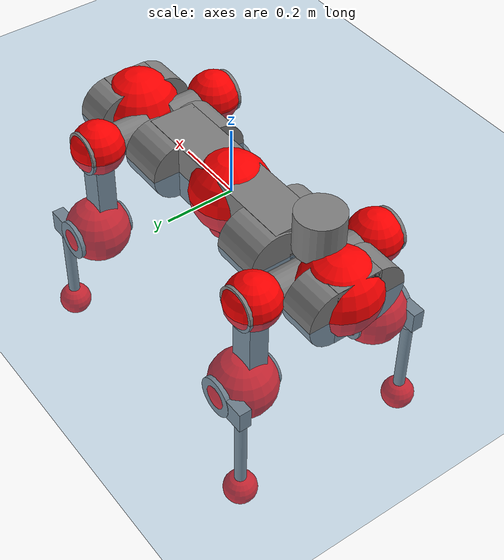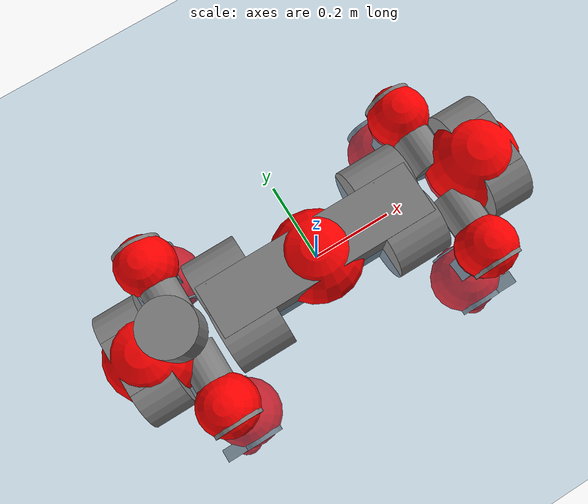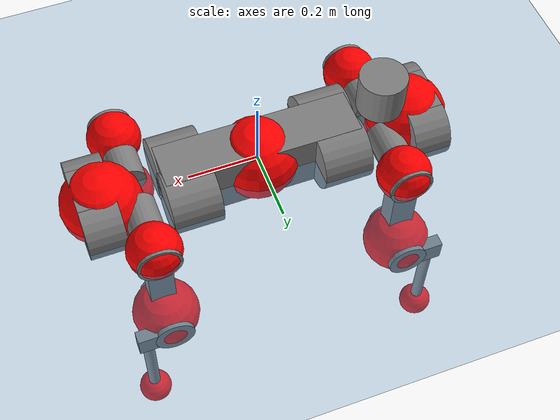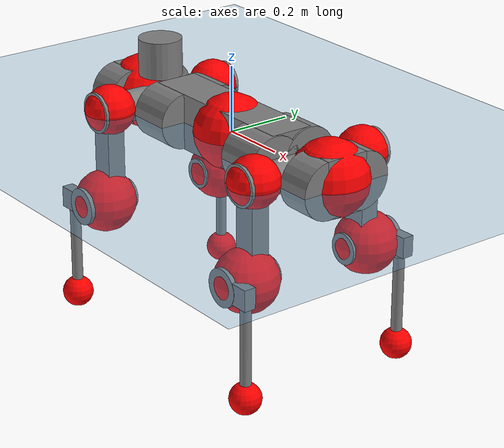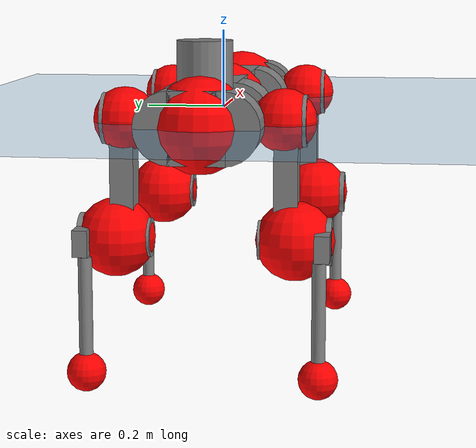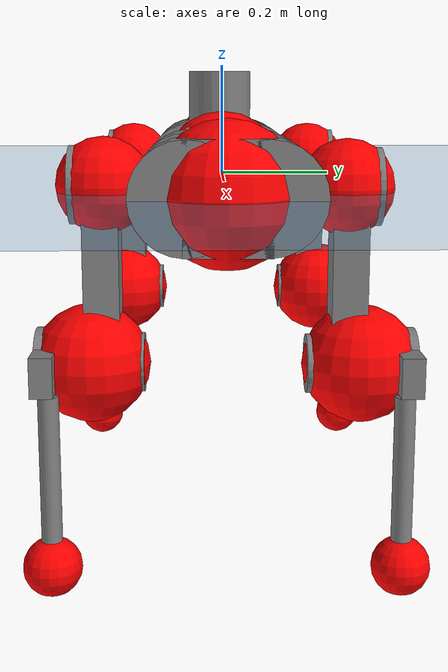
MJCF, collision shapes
<mujoco model="anymal_c">
  <compiler angle="radian" assetdir="assets" balanceinertia="true" inertiafromgeom="false"/>

  <option timestep="0.005" density="1.2" viscosity="2e-05"/>

  <size nkey="1"/>

  <visual>
    <quality shadowsize="8192"/>
    <map shadowclip="0.5"/>
  </visual>

  <default>
    <default class="/">
      <material specular="0" shininess="0.25"/>
      <geom contype="0" conaffinity="0" group="1" solref="-1000 -80"/>
      <site size="0.01 0.005 0.005" group="5"/>
      <general forcelimited="true" forcerange="-80 80" biastype="affine" gainprm="80" biasprm="0 -80 -2"/>
      <default class="anymal_c">
        <joint armature="0.01" damping="0.01" frictionloss="0.1"/>
        <default class="visual">
          <geom type="mesh" group="2"/>
          <default class="visual_zflip"/>
        </default>
        <default class="collision">
          <geom type="cylinder" group="3"/>
          <default class="foot">
            <geom size="0.03 0 0" type="sphere" condim="6" priority="1" friction="0.8 0.02 0.01" solimp="0.015 1 0.03"/>
          </default>
        </default>
      </default>
      <default class="reward_collision_sphere">
        <geom group="5" rgba="1 0 0 1"/>
      </default>
    </default>
  </default>

  <asset>
    <texture type="skybox" colorspace="auto" name="//unnamed_texture_0" builtin="gradient" rgb1="0.95 0.95 0.95" rgb2="0.95 0.95 0.95" width="100" height="600"/>
    <texture type="2d" colorspace="auto" name="texplane" builtin="checker" rgb1="0.345 0.575 0.748" rgb2="0.345 0.575 0.748" markrgb="1 1 1" width="512" height="512"/>
    <texture type="2d" colorspace="linear" name="base" file="base.png"/>
    <texture type="2d" colorspace="linear" name="top_shell" file="top_shell.png"/>
    <texture type="2d" colorspace="linear" name="bottom_shell" file="bottom_shell.png"/>
    <texture type="2d" colorspace="linear" name="remote" file="remote.png"/>
    <texture type="2d" colorspace="linear" name="hatch" file="hatch.png"/>
    <texture type="2d" colorspace="linear" name="handle" file="handle.png"/>
    <texture type="2d" colorspace="linear" name="face" file="face.png"/>
    <texture type="2d" colorspace="linear" name="battery" file="battery.png"/>
    <texture type="2d" colorspace="linear" name="lidar_cage" file="lidar_cage.png"/>
    <texture type="2d" colorspace="linear" name="depth_camera" file="depth_camera.png"/>
    <texture type="2d" colorspace="linear" name="wide_angle_camera" file="wide_angle_camera.png"/>
    <texture type="2d" colorspace="linear" name="lidar" file="lidar.png"/>
    <texture type="2d" colorspace="linear" name="drive" file="drive.png"/>
    <texture type="2d" colorspace="linear" name="hip_l" file="hip_l.png"/>
    <texture type="2d" colorspace="linear" name="shank_l" file="shank_l.png"/>
    <texture type="2d" colorspace="linear" name="foot" file="foot.png"/>
    <texture type="2d" colorspace="linear" name="thigh" file="thigh.png"/>
    <texture type="2d" colorspace="linear" name="shank_r" file="shank_r.png"/>
    <texture type="2d" colorspace="linear" name="hip_r" file="hip_r.png"/>
    <material name="MatPlane" class="/" texture="texplane" texuniform="true" texrepeat="2 2" specular="0.9" shininess="0.5"/>
    <material name="black_plastic" class="/" rgba="0.007 0.007 0.007 1"/>
    <material name="green" class="/" rgba="0.052 0.178 0.033 1"/>
    <material name="red" class="/" rgba="0.178 0.006 0.005 1"/>
    <material name="yellow" class="/" rgba="0.178 0.119 0.006 1"/>
    <material name="lwl" class="/" rgba="0.8 0.8 0.8 1"/>
    <material name="base" class="/" texture="base"/>
    <material name="top_shell" class="/" texture="top_shell"/>
    <material name="bottom_shell" class="/" texture="bottom_shell"/>
    <material name="hip_l" class="/" texture="hip_l"/>
    <material name="thigh" class="/" texture="thigh"/>
    <material name="shank_l" class="/" texture="shank_l"/>
    <material name="foot" class="/" texture="foot"/>
    <material name="hip_r" class="/" texture="hip_r"/>
    <material name="shank" class="/" texture="shank_r"/>
    <material name="hatch" class="/" texture="hatch"/>
    <material name="remote" class="/" texture="remote"/>
    <material name="handle" class="/" texture="handle"/>
    <material name="face" class="/" texture="face"/>
    <material name="depth_camera" class="/" texture="depth_camera"/>
    <material name="wide_angle_camera" class="/" texture="wide_angle_camera"/>
    <material name="battery" class="/" texture="battery"/>
    <material name="lidar_cage" class="/" texture="lidar_cage"/>
    <material name="lidar" class="/" texture="lidar"/>
    <material name="drive" class="/" texture="drive"/>
    <mesh name="base_0" class="/" file="base_0.obj"/>
    <mesh name="base_1" class="/" file="base_1.obj"/>
    <mesh name="base_2" class="/" file="base_2.obj"/>
    <mesh name="base_3" class="/" file="base_3.obj"/>
    <mesh name="base_4" class="/" file="base_4.obj"/>
    <mesh name="base_5" class="/" file="base_5.obj"/>
    <mesh name="top_shell" class="/" file="top_shell.obj"/>
    <mesh name="bottom_shell" class="/" file="bottom_shell.obj"/>
    <mesh name="remote" class="/" file="remote.obj"/>
    <mesh name="handle" class="/" file="handle.obj"/>
    <mesh name="face" class="/" file="face.obj"/>
    <mesh name="wide_angle_camera" class="/" file="wide_angle_camera.obj"/>
    <mesh name="depth_camera" class="/" file="depth_camera.obj"/>
    <mesh name="battery" class="/" file="battery.obj"/>
    <mesh name="lidar_cage" class="/" file="lidar_cage.obj"/>
    <mesh name="lidar" class="/" file="lidar.obj"/>
    <mesh name="drive" class="/" file="drive.obj"/>
    <mesh name="hip_l" class="/" file="hip_l.obj"/>
    <mesh name="thigh" class="/" file="thigh.obj"/>
    <mesh name="shank_l" class="/" file="shank_l.obj"/>
    <mesh name="foot" class="/" file="foot.obj"/>
    <mesh name="hip_r" class="/" file="hip_r.obj"/>
    <mesh name="hatch" class="/" file="hatch.obj"/>
    <mesh name="shank_r" class="/" file="shank_r.obj"/>
  </asset>

  <worldbody>
    <geom name="floor" class="/" size="100 100 0.125" type="plane" group="0" material="MatPlane"/>
    <light name="toplight_shadow" class="/" pos="0 0 5" dir="0.0990148 0.0990148 -0.990148" type="directional" ambient="0.04 0.04 0.04" diffuse="0.55 0.55 0.55" specular="0.12 0.12 0.12"/>
    <light name="toplight_fill" class="/" pos="0 0 5" dir="0.0990148 0.0990148 -0.990148" type="directional" castshadow="false" ambient="0.04 0.04 0.04" diffuse="0.3 0.3 0.3" specular="0.08 0.08 0.08"/>
    <body name="trunk" childclass="anymal_c" pos="-0.000146313 0.000463769 0.000857068" quat="1 0.000100541 -0.000112017 -4.63588e-05">
      <inertial pos="0.00306091 -0.000814797 0.0498604" quat="0.500591 0.500797 0.502325 0.496266" mass="17.0209" diaginertia="0.628313 0.328241 0.239503"/>
      <joint name="//unnamed_joint_0" type="free" armature="0" damping="0" frictionloss="0"/>
      <geom name="//unnamed_geom_1" class="visual" material="green" mesh="base_0"/>
      <geom name="//unnamed_geom_2" class="visual" material="yellow" mesh="base_1"/>
      <geom name="//unnamed_geom_3" class="visual" material="red" mesh="base_2"/>
      <geom name="//unnamed_geom_4" class="visual" material="black_plastic" mesh="base_3"/>
      <geom name="//unnamed_geom_5" class="visual" material="lwl" mesh="base_4"/>
      <geom name="//unnamed_geom_6" class="visual" material="base" mesh="base_5"/>
      <geom name="trunk_1" class="collision" size="0.278426 0.0672062 0.0864079" type="box"/>
      <geom name="trunk_2" class="collision" size="0.0864079 0.0696064" pos="0.215449 0.0613623 0" quat="0.707107 0 0.707107 0"/>
      <geom name="trunk_3" class="collision" size="0.0864079 0.0696064" pos="-0.215449 0.0613623 0" quat="0.707107 0 0.707107 0"/>
      <geom name="trunk_4" class="collision" size="0.0864079 0.0696064" pos="0.215449 -0.0613623 0" quat="0.707107 0 0.707107 0"/>
      <geom name="trunk_5" class="collision" size="0.0864079 0.0696064" pos="-0.215449 -0.0613623 0" quat="0.707107 0 0.707107 0"/>
      <geom name="//unnamed_geom_12" class="visual" material="top_shell" mesh="top_shell"/>
      <geom name="//unnamed_geom_13" class="visual" material="bottom_shell" mesh="bottom_shell"/>
      <geom name="//unnamed_geom_14" class="visual" material="remote" mesh="remote"/>
      <geom name="//unnamed_geom_15" class="visual" material="handle" mesh="handle"/>
      <geom name="//unnamed_geom_16" class="visual" pos="0.41059 0 0" quat="1 0 0 0" material="face" mesh="face"/>
      <geom name="trunk_6" class="collision" size="0.0528048 0.0672062 0.0864079" pos="0.465072 0 0" type="box"/>
      <geom name="//unnamed_geom_18" class="collision" size="0.0864079 0.0528048" pos="0.465072 0.0613623 0" quat="0.707107 0 0.707107 0"/>
      <geom name="//unnamed_geom_19" class="collision" size="0.0864079 0.0528048" pos="0.465072 -0.0613623 0" quat="0.707107 0 0.707107 0"/>
      <geom name="//unnamed_geom_20" class="visual" pos="0.457297 0 -0.0297535" quat="0.965926 0 0.258819 0" material="depth_camera" mesh="depth_camera"/>
      <geom name="//unnamed_geom_21" class="visual" pos="0.508161 0 0.015166" material="wide_angle_camera" mesh="wide_angle_camera"/>
      <geom name="//unnamed_geom_22" class="visual_zflip" pos="-0.41059 0 0" quat="0 0 0 1" material="face" mesh="face"/>
      <geom name="trunk_7" class="collision" size="0.0528048 0.0672062 0.0864079" pos="-0.465072 0 0" quat="0 0 0 1" type="box"/>
      <geom name="//unnamed_geom_24" class="collision" size="0.0864079 0.0528048" pos="-0.465072 -0.0613623 0" quat="0 -0.707107 0 0.707107"/>
      <geom name="//unnamed_geom_25" class="collision" size="0.0864079 0.0528048" pos="-0.465072 0.0613623 0" quat="0 -0.707107 0 0.707107"/>
      <geom name="//unnamed_geom_26" class="visual" pos="-0.457297 0 -0.0297535" quat="0 -0.258819 0 0.965926" material="depth_camera" mesh="depth_camera"/>
      <geom name="//unnamed_geom_27" class="visual_zflip" pos="-0.508161 0 0.015166" quat="0 0 0 1" material="wide_angle_camera" mesh="wide_angle_camera"/>
      <geom name="//unnamed_geom_28" class="visual" material="battery" mesh="battery"/>
      <geom name="//unnamed_geom_29" class="visual" pos="0 0.0655307 0.0292591" quat="0.683013 -0.183013 0.183013 0.683013" material="depth_camera" mesh="depth_camera"/>
      <geom name="//unnamed_geom_30" class="visual" pos="0 -0.0655307 0.0292591" quat="0.683013 0.183013 0.183013 -0.683013" material="depth_camera" mesh="depth_camera"/>
      <geom name="//unnamed_geom_31" class="visual" pos="-0.360567 0 0.0744623" quat="1 0 0 0" material="lidar_cage" mesh="lidar_cage"/>
      <geom name="trunk_8" class="collision" size="0.0672062 0.0576053" pos="-0.360567 0 0.135248"/>
      <geom name="//unnamed_geom_33" class="visual" pos="-0.360567 -4.47731e-05 0.144062" quat="0.707107 0 0 -0.707107" material="lidar" mesh="lidar"/>
      <geom name="//unnamed_geom_34" class="visual" pos="0.297071 0.0912154 -2.35442e-09" quat="0.258819 0.965926 0 0" material="drive" mesh="drive"/>
      <geom name="//unnamed_geom_35" class="visual" pos="0.297071 -0.0912154 2.35442e-09" quat="0.258819 -0.965926 0 0" material="drive" mesh="drive"/>
      <geom name="//unnamed_geom_36" class="visual" pos="-0.297071 0.0912154 2.35442e-09" quat="0 0 0.965926 -0.258819" material="drive" mesh="drive"/>
      <geom name="//unnamed_geom_37" class="visual" pos="-0.297071 -0.0912154 -2.35442e-09" quat="0 0 -0.965926 -0.258819" material="drive" mesh="drive"/>
      <geom name="//unnamed_geom_38" class="visual" pos="0.114906 0 0.0739557" quat="1 0 0 0" material="hatch" mesh="hatch"/>
      <geom name="//unnamed_geom_39" class="reward_collision_sphere" size="0.115211"/>
      <geom name="//unnamed_geom_40" class="reward_collision_sphere" size="0.115211" pos="0.445756 0 0"/>
      <geom name="//unnamed_geom_41" class="reward_collision_sphere" size="0.115211" pos="-0.445756 0 0"/>
      <site name="imu" pos="0.243034 -0.00340596 0.0515866" size="0.00960088"/>
      <camera name="track" pos="0 -1.75321 0" quat="0.707107 0.707107 0 0" mode="trackcom"/>
      <camera name="ego_camera" pos="0.445756 0 -0.0405237" quat="-0.5 -0.5 0.5 0.5"/>
      <body name="LF_HIP" pos="0.297212 0.0910823 0.000747138" quat="0.259068 0.965858 0.000654265 0.000765438">
        <inertial pos="0.0570196 -0.0127846 -0.00774941" quat="-0.128192 0.709236 -0.13441 0.680062" mass="2.50963" diaginertia="0.00569484 0.00260569 0.0035472"/>
        <joint name="LF_HAA" pos="0 0 0" axis="1 1.98524e-06 -2.92898e-06" range="-0.688133 0.485003" armature="0.00981509" damping="0.0127695" frictionloss="0.0940473"/>
        <geom name="//unnamed_geom_42" class="visual" pos="0 -0.0001385 2.27485e-05" quat="0.258819 -0.965926 0 0" material="hip_l" mesh="hip_l"/>
        <geom name="//unnamed_geom_43" class="visual" pos="0.059335 -0.070445 -0.041681" quat="0.183013 -0.683013 0.683013 0.183013" material="drive" mesh="drive"/>
        <geom name="//unnamed_geom_44" class="collision" size="0.0480044 0.0672062" pos="0.059335 -0.010484 -0.0069954" quat="-0.353553 -0.612372 0.612372 -0.353553"/>
        <body name="LF_THIGH" pos="0.0597133 -0.0642805 -0.0408916" quat="0.183013 -0.683014 0.68301 0.183019">
          <inertial pos="0.0309897 -0.00151468 -0.251003" quat="0.993069 -0.00824914 -0.0814883 0.0842903" mass="2.70874" diaginertia="0.0289422 0.0156072 0.00447091"/>
          <joint name="LF_HFE" pos="0 0 0" axis="1 -0.000671576 -7.34116e-05" range="-3.14703 3.178" armature="0.0099388" damping="0" frictionloss="0.0958605"/>
          <geom name="//unnamed_geom_45" class="visual" pos="0.00226742 3.57293e-06 0" quat="0.707107 0 0 -0.707107" material="thigh" mesh="thigh"/>
          <geom name="//unnamed_geom_46" class="collision" size="0.0624057 0.0384035" pos="0.0396227 0 0" quat="0.5 0.5 -0.5 -0.5"/>
          <geom name="//unnamed_geom_47" class="collision" size="0.0360033 0.0288026 0.135674" pos="0.029717 0 -0.143164" quat="0.707107 0 0 -0.707107" type="box"/>
          <geom name="//unnamed_geom_48" class="visual" pos="0.099354 0 -0.288731" quat="1 0 0 0" material="drive" mesh="drive"/>
          <geom name="//unnamed_geom_49" class="collision" size="0.0480044 0.0672062" pos="0.0300142 0 -0.288731" quat="0.707107 0 0.707107 0"/>
          <geom name="//unnamed_geom_50" class="reward_collision_sphere" size="0.076807" pos="0.0247642 0 0"/>
          <body name="LF_SHANK" pos="0.101534 0.00146845 -0.288549" quat="1 -2.74023e-05 -1.85866e-05 8.92359e-06">
            <inertial pos="0.00595405 -0.0529841 -0.0818016" quat="0.992937 -0.115876 -0.00116401 -0.0254413" mass="0.528729" diaginertia="0.00965434 0.00477491 0.00118925"/>
            <joint name="LF_KFE" pos="0 0 0" axis="1 -0.000111456 -0.000668224" range="-3.14371 3.11382" armature="0.00948422" damping="0.00963531" frictionloss="0.0934499"/>
            <geom name="//unnamed_geom_51" class="visual" pos="0.000739357 0.00394229 0" quat="0.707107 0 0 -0.707107" material="shank_l" mesh="shank_l"/>
            <geom name="LF_kfe_act" class="collision" size="0.0576053 0.0192018" pos="0.0198114 0 0" quat="0.5 0.5 -0.5 -0.5"/>
            <geom name="//unnamed_geom_53" class="collision" size="0.0552041 0.032403 0.0182417" pos="0.0198114 -0.0504039 0" quat="0.5 0.5 -0.5 -0.5" type="box"/>
            <geom name="//unnamed_geom_54" class="visual" pos="0.0129267 -0.0758269 -0.342395" quat="0.382683 0 0 -0.92388" material="foot" mesh="foot"/>
            <geom name="LF_calf" class="collision" size="0.0168015 0.135614" pos="0.0129269 -0.0770974 -0.171197" quat="0.707107 0 0 -0.707107"/>
            <geom name="LF_foot" class="foot" size="0.027788" pos="0.0129269 -0.0770974 -0.3196" quat="0.707107 0 0 -0.707107"/>
            <geom name="//unnamed_geom_57" class="reward_collision_sphere" size="0.0960088" pos="-0.0495284 0 0"/>
            <geom name="//unnamed_geom_58" class="reward_collision_sphere" size="0.0480044" pos="0.0129269 -0.0770974 -0.3196"/>
            <site name="LF_foot" class="foot" pos="0.0129269 -0.0770974 -0.3196" quat="0.707107 0 0 -0.707107" size="0.00960088"/>
          </body>
        </body>
      </body>
      <body name="RF_HIP" pos="0.296851 -0.0926988 0.00181353" quat="0.258854 -0.965916 -9.40558e-06 2.07542e-05">
        <inertial pos="0.0566561 0.0140072 -0.00879997" quat="0.134099 0.674926 0.134047 0.713108" mass="2.51144" diaginertia="0.00576819 0.00257031 0.00359718"/>
        <joint name="RF_HAA" pos="0 0 0" axis="0.999998 -0.00174479 4.6159e-05" range="-0.487858 0.723158" armature="0.00956763" damping="0.0103236" frictionloss="0.0918402"/>
        <geom name="//unnamed_geom_59" class="visual" pos="0 0.000138499 2.27484e-05" quat="0.258819 0.965926 0 0" material="hip_r" mesh="hip_r"/>
        <geom name="//unnamed_geom_60" class="visual" pos="0.059335 0.070445 -0.041681" quat="0.183013 0.683013 0.683013 -0.183013" material="drive" mesh="drive"/>
        <geom name="//unnamed_geom_61" class="collision" size="0.0480044 0.0672062" pos="0.059335 0.010484 -0.0069954" quat="-0.353553 0.612372 0.612372 0.353553"/>
        <body name="RF_THIGH" pos="0.058792 0.0632295 -0.0433324" quat="0.182903 0.683113 0.682963 -0.182931">
          <inertial pos="0.0307399 2.75642e-05 -0.250453" quat="0.993299 -0.0142119 -0.074728 0.0870105" mass="2.75006" diaginertia="0.0297626 0.0158183 0.00456422"/>
          <joint name="RF_HFE" pos="0 0 0" axis="0.999998 -0.000969083 -0.00168612" stiffness="0.0047239" range="-3.1769 3.15373" armature="0.00929563" damping="0.00933611" frictionloss="0.0953247"/>
          <geom name="//unnamed_geom_62" class="visual" pos="0.00226742 3.57293e-06 0" quat="0.707107 0 0 -0.707107" material="thigh" mesh="thigh"/>
          <geom name="//unnamed_geom_63" class="collision" size="0.0624057 0.0384035" pos="0.0396227 0 0" quat="0.5 0.5 0.5 0.5"/>
          <geom name="//unnamed_geom_64" class="collision" size="0.0360033 0.0288026 0.135674" pos="0.029717 0 -0.143164" quat="0.707107 0 0 0.707107" type="box"/>
          <geom name="//unnamed_geom_65" class="visual" pos="0.099354 0 -0.288731" quat="1 0 0 0" material="drive" mesh="drive"/>
          <geom name="//unnamed_geom_66" class="collision" size="0.0480044 0.0672062" pos="0.0300142 0 -0.288731" quat="0.707107 0 0.707107 0"/>
          <geom name="//unnamed_geom_67" class="reward_collision_sphere" size="0.076807" pos="0.0247642 0 0"/>
          <body name="RF_SHANK" pos="0.098996 0.000832911 -0.288761" quat="1 9.46691e-06 4.95337e-06 4.70782e-06">
            <inertial pos="0.0055314 0.0535179 -0.0793109" quat="0.993035 0.115267 0.0023685 0.0242708" mass="0.502916" diaginertia="0.00930705 0.00477198 0.00114013"/>
            <joint name="RF_KFE" pos="0 0 0" axis="0.999999 -0.00150744 0.000442979" range="-3.12609 3.15212" armature="0.0097489" damping="0.00819802" frictionloss="0.095868"/>
            <geom name="//unnamed_geom_68" class="visual" pos="0.000739353 -0.00394228 0" quat="0.707107 0 0 0.707107" material="shank" mesh="shank_r"/>
            <geom name="RF_kfe_act" class="collision" size="0.0576053 0.0192018" pos="0.0198114 0 0" quat="0.5 0.5 0.5 0.5"/>
            <geom name="//unnamed_geom_70" class="collision" size="0.0552041 0.032403 0.0182417" pos="0.0198114 0.0504039 0" quat="0.5 0.5 0.5 0.5" type="box"/>
            <geom name="//unnamed_geom_71" class="visual" pos="0.0129271 0.0758269 -0.342395" quat="0.382683 0 0 0.92388" material="foot" mesh="foot"/>
            <geom name="RF_calf" class="collision" size="0.0168015 0.135614" pos="0.0129269 0.0770974 -0.171197" quat="0.707107 0 0 0.707107"/>
            <geom name="RF_foot" class="foot" size="0.0284266" pos="0.0129269 0.0770974 -0.3196" quat="0.707107 0 0 0.707107"/>
            <geom name="//unnamed_geom_74" class="reward_collision_sphere" size="0.0960088" pos="-0.0495284 0 0"/>
            <geom name="//unnamed_geom_75" class="reward_collision_sphere" size="0.0480044" pos="0.0129269 0.0770974 -0.3196"/>
            <site name="RF_foot" class="foot" pos="0.0129269 0.0770974 -0.3196" quat="0.707107 0 0 0.707107" size="0.00960088"/>
          </body>
        </body>
      </body>
      <body name="LH_HIP" pos="-0.297056 0.0922136 -0.000952342" quat="0.000244909 -2.9663e-05 0.965903 -0.258906">
        <inertial pos="0.0561168 0.0127432 -0.00995946" quat="0.134677 0.677382 0.128851 0.711628" mass="2.49003" diaginertia="0.00563076 0.00253314 0.00350472"/>
        <joint name="LH_HAA" pos="0 0 0" axis="0.999999 -0.000900307 -0.00111582" stiffness="0.000987707" range="-0.453614 0.752515" armature="0.00953634" damping="0.0106271" frictionloss="0.102991"/>
        <geom name="//unnamed_geom_76" class="visual" pos="0 0.000138499 2.27484e-05" quat="-0.258819 -0.965926 0 0" material="hip_r" mesh="hip_r"/>
        <geom name="//unnamed_geom_77" class="visual" pos="0.059335 0.070445 -0.041681" quat="0.183013 0.683013 0.683013 -0.183013" material="drive" mesh="drive"/>
        <geom name="//unnamed_geom_78" class="collision" size="0.0480044 0.0672062" pos="0.059335 0.010484 -0.0069954" quat="-0.353553 0.612372 0.612372 0.353553"/>
        <body name="LH_THIGH" pos="0.0585949 0.0637022 -0.0426251" quat="0.183052 0.683024 0.682975 -0.183073">
          <inertial pos="0.0292896 0.00035655 -0.250808" quat="0.993176 0.000975788 -0.0782576 0.0864685" mass="2.67703" diaginertia="0.0278731 0.0152233 0.00432573"/>
          <joint name="LH_HFE" pos="0 0 0" axis="0.99997 -0.0076911 -0.000778593" stiffness="0.00229389" range="-3.17132 3.14068" armature="0.00915145" damping="0.00413756" frictionloss="0.0974498"/>
          <geom name="//unnamed_geom_79" class="visual" pos="0.00226742 3.57293e-06 0" quat="0.707107 0 0 -0.707107" material="thigh" mesh="thigh"/>
          <geom name="//unnamed_geom_80" class="collision" size="0.0624057 0.0384035" pos="0.0396227 0 0" quat="0.5 0.5 -0.5 -0.5"/>
          <geom name="//unnamed_geom_81" class="collision" size="0.0360033 0.0288026 0.135674" pos="0.029717 0 -0.143164" quat="0.707107 0 0 -0.707107" type="box"/>
          <geom name="//unnamed_geom_82" class="visual" pos="0.099354 0 -0.288731" quat="1 0 0 0" material="drive" mesh="drive"/>
          <geom name="//unnamed_geom_83" class="collision" size="0.0480044 0.0672062" pos="0.0300142 0 -0.288731" quat="0.707107 0 0.707107 0"/>
          <geom name="//unnamed_geom_84" class="reward_collision_sphere" size="0.076807" pos="0.0247642 0 0"/>
          <body name="LH_SHANK" pos="0.0998164 -0.00154918 -0.289568" quat="1 0.000104751 0.000236816 0.000283623">
            <inertial pos="0.00476476 0.0540515 -0.0818582" quat="0.992628 0.118182 -0.00360082 0.0266548" mass="0.519777" diaginertia="0.00970302 0.00473527 0.00121121"/>
            <joint name="LH_KFE" pos="0 0 0" axis="1 0.0006725 0.000277574" range="-3.15942 3.14009" armature="0.00994856" damping="0.0107982" frictionloss="0.0933121"/>
            <geom name="//unnamed_geom_85" class="visual" pos="0.000739353 -0.00394228 0" quat="-0.707107 0 0 -0.707107" material="shank" mesh="shank_r"/>
            <geom name="LH_kfe_act" class="collision" size="0.0576053 0.0192018" pos="0.0198114 0 0" quat="0.5 0.5 -0.5 -0.5"/>
            <geom name="//unnamed_geom_87" class="collision" size="0.0552041 0.032403 0.0182417" pos="0.0198114 0.0504039 0" quat="0.5 0.5 -0.5 -0.5" type="box"/>
            <geom name="//unnamed_geom_88" class="visual" pos="0.0129271 0.0758269 -0.342395" quat="-0.382683 0 0 -0.92388" material="foot" mesh="foot"/>
            <geom name="LH_calf" class="collision" size="0.0168015 0.135614" pos="0.0129269 0.0770974 -0.171197" quat="0.707107 0 0 -0.707107"/>
            <geom name="LH_foot" class="foot" size="0.0312042" pos="0.0129269 0.0770974 -0.3196" quat="0.707107 0 0 -0.707107"/>
            <geom name="//unnamed_geom_91" class="reward_collision_sphere" size="0.0960088" pos="-0.0495284 0 0"/>
            <geom name="//unnamed_geom_92" class="reward_collision_sphere" size="0.0480044" pos="0.0129269 0.0770974 -0.3196"/>
            <site name="LH_foot" class="foot" pos="0.0129269 0.0770974 -0.3196" quat="0.707107 0 0 -0.707107" size="0.00960088"/>
          </body>
        </body>
      </body>
      <body name="RH_HIP" pos="-0.297016 -0.0898331 0.000123975" quat="-9.18151e-05 0.000494041 -0.965966 -0.258667">
        <inertial pos="0.0558111 -0.0121822 -0.008799" quat="-0.128024 0.70985 -0.135041 0.679328" mass="2.36968" diaginertia="0.00542646 0.00247908 0.00342636"/>
        <joint name="RH_HAA" pos="0 0 0" axis="0.999991 -0.000266279 -0.00423285" range="-0.740668 0.477511" armature="0.0099259" damping="0.00383801" frictionloss="0.0915492"/>
        <geom name="//unnamed_geom_93" class="visual" pos="0 -0.0001385 2.27485e-05" quat="-0.258819 0.965926 0 0" material="hip_l" mesh="hip_l"/>
        <geom name="//unnamed_geom_94" class="visual" pos="0.059335 -0.070445 -0.041681" quat="-0.183013 0.683013 -0.683013 -0.183013" material="drive" mesh="drive"/>
        <geom name="//unnamed_geom_95" class="collision" size="0.0480044 0.0672062" pos="0.059335 -0.010484 -0.0069954" quat="0.353553 0.612372 -0.612372 0.353553"/>
        <body name="RH_THIGH" pos="0.0591301 -0.0633717 -0.0410119" quat="-0.183029 0.683005 -0.683018 -0.183006">
          <inertial pos="0.0312525 5.95782e-05 -0.248677" quat="0.993139 -0.00531887 -0.0802735 0.0848726" mass="2.65971" diaginertia="0.0281898 0.0152106 0.00446043"/>
          <joint name="RH_HFE" pos="0 0 0" axis="0.999979 0.00383552 -0.00527916" range="-3.17447 3.17369" armature="0.00944669" damping="0.00713217" frictionloss="0.0916624"/>
          <geom name="//unnamed_geom_96" class="visual" pos="0.00226742 3.57293e-06 0" quat="0.707107 0 0 -0.707107" material="thigh" mesh="thigh"/>
          <geom name="//unnamed_geom_97" class="collision" size="0.0624057 0.0384035" pos="0.0396227 0 0" quat="0.5 0.5 0.5 0.5"/>
          <geom name="//unnamed_geom_98" class="collision" size="0.0360033 0.0288026 0.135674" pos="0.029717 0 -0.143164" quat="0.707107 0 0 0.707107" type="box"/>
          <geom name="//unnamed_geom_99" class="visual" pos="0.099354 0 -0.288731" quat="1 0 0 0" material="drive" mesh="drive"/>
          <geom name="//unnamed_geom_100" class="collision" size="0.0480044 0.0672062" pos="0.0300142 0 -0.288731" quat="0.707107 0 0.707107 0"/>
          <geom name="//unnamed_geom_101" class="reward_collision_sphere" size="0.076807" pos="0.0247642 0 0"/>
          <body name="RH_SHANK" pos="0.100575 0.000142022 -0.289193" quat="1 -3.17872e-06 -1.49907e-05 -3.58161e-06">
            <inertial pos="0.00456962 -0.0536725 -0.081956" quat="0.992727 -0.117636 -0.00217107 -0.0255006" mass="0.518863" diaginertia="0.00971488 0.00476294 0.00119938"/>
            <joint name="RH_KFE" pos="0 0 0" axis="0.999954 -0.00420338 0.00866005" range="-3.12809 3.12417" armature="0.010015" damping="0" frictionloss="0.0974442"/>
            <geom name="//unnamed_geom_102" class="visual" pos="0.000739357 0.00394229 0" quat="0.707107 0 0 -0.707107" material="shank_l" mesh="shank_l"/>
            <geom name="RH_kfe_act" class="collision" size="0.0576053 0.0192018" pos="0.0198114 0 0" quat="0.5 0.5 0.5 0.5"/>
            <geom name="//unnamed_geom_104" class="collision" size="0.0552041 0.032403 0.0182417" pos="0.0198114 -0.0504039 0" quat="0.5 0.5 0.5 0.5" type="box"/>
            <geom name="//unnamed_geom_105" class="visual" pos="0.0129267 -0.0758269 -0.342395" quat="0.382683 0 0 -0.92388" material="foot" mesh="foot"/>
            <geom name="RH_calf" class="collision" size="0.0168015 0.135614" pos="0.0129269 -0.0770974 -0.171197" quat="0.707107 0 0 0.707107"/>
            <geom name="RH_foot" class="foot" size="0.0294507" pos="0.0129269 -0.0770974 -0.3196" quat="0.707107 0 0 0.707107"/>
            <geom name="//unnamed_geom_108" class="reward_collision_sphere" size="0.0960088" pos="-0.0495284 0 0"/>
            <geom name="//unnamed_geom_109" class="reward_collision_sphere" size="0.0480044" pos="0.0129269 -0.0770974 -0.3196"/>
            <site name="RH_foot" class="foot" pos="0.0129269 -0.0770974 -0.3196" quat="0.707107 0 0 0.707107" size="0.00960088"/>
          </body>
        </body>
      </body>
    </body>
  </worldbody>

  <contact>
    <pair class="/" geom1="floor" geom2="LF_foot" name="//unnamed_contact_0"/>
    <pair class="/" geom1="floor" geom2="RF_foot" name="//unnamed_contact_1"/>
    <pair class="/" geom1="floor" geom2="LH_foot" name="//unnamed_contact_2"/>
    <pair class="/" geom1="floor" geom2="RH_foot" name="//unnamed_contact_3"/>
  </contact>

  <actuator>
    <general name="LF_HAA" class="/" joint="LF_HAA" forcerange="-76.1149 76.1149" gainprm="78.8875" biasprm="0 -78.8875 -2.00525"/>
    <general name="LF_HFE" class="/" joint="LF_HFE" forcerange="-80.4361 80.4361" gainprm="78.8875" biasprm="0 -78.8875 -2.00525"/>
    <general name="LF_KFE" class="/" joint="LF_KFE" forcerange="-73.5336 73.5336" gainprm="78.8875" biasprm="0 -78.8875 -2.00525"/>
    <general name="RF_HAA" class="/" joint="RF_HAA" forcerange="-79.1903 79.1903" gainprm="78.8875" biasprm="0 -78.8875 -2.00525"/>
    <general name="RF_HFE" class="/" joint="RF_HFE" forcerange="-77.6203 77.6203" gainprm="78.8875" biasprm="0 -78.8875 -2.00525"/>
    <general name="RF_KFE" class="/" joint="RF_KFE" forcerange="-83.3925 83.3925" gainprm="78.8875" biasprm="0 -78.8875 -2.00525"/>
    <general name="LH_HAA" class="/" joint="LH_HAA" forcerange="-82.1869 82.1869" gainprm="78.8875" biasprm="0 -78.8875 -2.00525"/>
    <general name="LH_HFE" class="/" joint="LH_HFE" forcerange="-75.0127 75.0127" gainprm="78.8875" biasprm="0 -78.8875 -2.00525"/>
    <general name="LH_KFE" class="/" joint="LH_KFE" forcerange="-79.5321 79.5321" gainprm="78.8875" biasprm="0 -78.8875 -2.00525"/>
    <general name="RH_HAA" class="/" joint="RH_HAA" forcerange="-76.7051 76.7051" gainprm="78.8875" biasprm="0 -78.8875 -2.00525"/>
    <general name="RH_HFE" class="/" joint="RH_HFE" forcerange="-71.3609 71.3609" gainprm="78.8875" biasprm="0 -78.8875 -2.00525"/>
    <general name="RH_KFE" class="/" joint="RH_KFE" forcerange="-74.7865 74.7865" gainprm="78.8875" biasprm="0 -78.8875 -2.00525"/>
  </actuator>

  <sensor>
    <gyro site="imu" name="imu_angular_velocity"/>
    <velocimeter site="imu" name="imu_linear_velocity"/>
    <framelinvel objtype="site" objname="LF_foot" name="LF_foot_global_linear_velocity"/>
    <framelinvel objtype="site" objname="RF_foot" name="RF_foot_global_linear_velocity"/>
    <framelinvel objtype="site" objname="LH_foot" name="LH_foot_global_linear_velocity"/>
    <framelinvel objtype="site" objname="RH_foot" name="RH_foot_global_linear_velocity"/>
  </sensor>

  <keyframe>
    <key name="home" qpos="0 0 0.55 1 0 0 0 0 0.4 -0.8 0 -0.4 0.8 0 -0.4 0.8 0 0.4 -0.8"/>
  </keyframe>
</mujoco>
